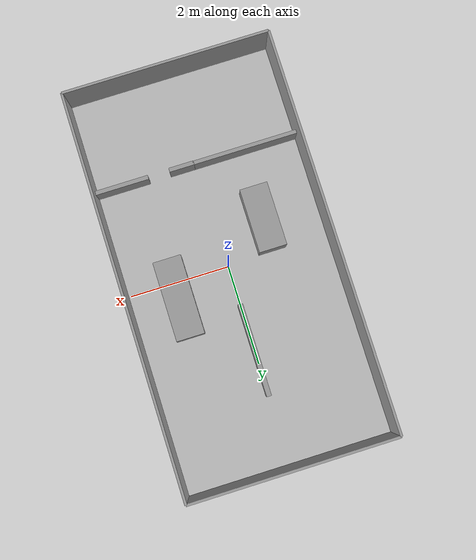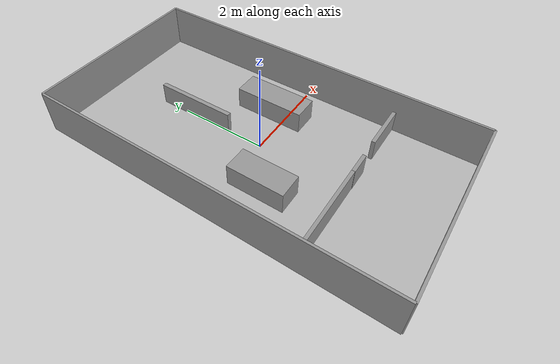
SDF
<sdf version="1.7">
 <world name="patrol_world">
  <light name="sun" type="directional">
   <pose>0 0 10 0 -0 0</pose>
   <diffuse>0.8 0.8 0.8 1</diffuse>
   <specular>0.2 0.2 0.2 1</specular>
   <attenuation>
    <range>1000</range>
    <constant>0.9</constant>
    <linear>0.01</linear>
    <quadratic>0.001</quadratic>
   </attenuation>
   <direction>-0.5 0.1 -0.9</direction>
   <spot><inner_angle>0</inner_angle><outer_angle>0</outer_angle><falloff>0</falloff></spot>
  </light>
  <model name="ground_plane">
   <static>1</static>
   <link name="link">
    <collision name="collision">
     <geometry><plane><normal>0 0 1</normal><size>100 100</size></plane></geometry>
     <surface>
      <contact><collide_bitmask>65535</collide_bitmask></contact>
      <friction><ode><mu>100</mu><mu2>50</mu2></ode></friction>
     </surface>
    </collision>
    <visual name="visual">
     <cast_shadows>0</cast_shadows>
     <geometry><box><size>4.116666666666666 8.066666666666666 .01</size></box></geometry>
     <material>
      <script>
       <uri>/home/dongyanqi/catkin_ws/src/simulator_gazebo/materials/scripts/patrol_region_map.material</uri>
       <name>GroundPlane/Image/patrol</name>
      </script>
     </material>
    </visual>
   </link>
  </model>
  <gravity>0 0 -9.8</gravity>
  <magnetic_field>6e-06 2.3e-05 -4.2e-05</magnetic_field>
  <atmosphere type="adiabatic"/>
  <physics type="ode">
   <max_step_size>0.001</max_step_size>
   <real_time_factor>1</real_time_factor>
   <real_time_update_rate>1000</real_time_update_rate>
  </physics>
  <scene><ambient>0.4 0.4 0.4 1</ambient><background>0.7 0.7 0.7 1</background><shadows>1</shadows></scene>
  <spherical_coordinates>
   <surface_model>EARTH_WGS84</surface_model>
   <latitude_deg>0</latitude_deg>
   <longitude_deg>0</longitude_deg>
   <elevation>0</elevation>
   <heading_deg>0</heading_deg>
  </spherical_coordinates>
  <model name="Box_0">
   <pose>0.301582656638545 -2.096809376253064 0 0 -0 0</pose>
   <link name="Box_0_link">
    <collision name="Box_0_Collision">
     <pose>0 0 0.25 0 -0 0</pose>
     <geometry><box><size>0.5023883396880358 0.083630318112351 0.5</size></box></geometry>
    </collision>
    <visual name="Box_0_Visual">
     <pose>0 0 0.25 0 -0 0</pose>
     <geometry><box><size>0.5023883396880358 0.083630318112351 0.5</size></box></geometry>
     <material>
      <script><uri>file://media/materials/scripts/gazebo.material</uri><name>Gazebo/Grey</name></script>
      <ambient>1 1 1 1</ambient>
     </material>
     <meta><layer>0</layer></meta>
    </visual>
    <inertial>
     <inertia><ixx>1</ixx><ixy>0</ixy><ixz>0</ixz><iyy>1</iyy><iyz>0</iyz><izz>1</izz></inertia>
     <mass>1</mass>
    </inertial>
   </link>
  </model>
  <model name="Box_1">
   <pose>-0.9917270517276285 -2.093775374536942 0 0 -0 0</pose>
   <link name="Box_1_link">
    <collision name="Box_1_Collision">
     <pose>0 0 0.25 0 -0 0</pose>
     <geometry><box><size>2.1179572151909953 0.07671716137227858 0.5</size></box></geometry>
    </collision>
    <visual name="Box_1_Visual">
     <pose>0 0 0.25 0 -0 0</pose>
     <geometry><box><size>2.1179572151909953 0.07671716137227858 0.5</size></box></geometry>
     <material>
      <script><uri>file://media/materials/scripts/gazebo.material</uri><name>Gazebo/Grey</name></script>
      <ambient>1 1 1 1</ambient>
     </material>
     <meta><layer>0</layer></meta>
    </visual>
    <inertial>
     <inertia><ixx>1</ixx><ixy>0</ixy><ixz>0</ixz><iyy>1</iyy><iyz>0</iyz><izz>1</izz></inertia>
     <mass>1</mass>
    </inertial>
   </link>
  </model>
  <model name="Box_2">
   <pose>1.5195341140515126 -2.087429974731144 0 0 -0 0</pose>
   <link name="Box_2_link">
    <collision name="Box_2_Collision">
     <pose>0 0 0.25 0 -0 0</pose>
     <geometry><box><size>1.0799799575450795 0.08413303861441257 0.5</size></box></geometry>
    </collision>
    <visual name="Box_2_Visual">
     <pose>0 0 0.25 0 -0 0</pose>
     <geometry><box><size>1.0799799575450795 0.08413303861441257 0.5</size></box></geometry>
     <material>
      <script><uri>file://media/materials/scripts/gazebo.material</uri><name>Gazebo/Grey</name></script>
      <ambient>1 1 1 1</ambient>
     </material>
     <meta><layer>0</layer></meta>
    </visual>
    <inertial>
     <inertia><ixx>1</ixx><ixy>0</ixy><ixz>0</ixz><iyy>1</iyy><iyz>0</iyz><izz>1</izz></inertia>
     <mass>1</mass>
    </inertial>
   </link>
  </model>
  <model name="Box_3">
   <pose>-0.9145012080840386 -0.6752626134581605 0 0 -0 0</pose>
   <link name="Box_3_link">
    <collision name="Box_3_Collision">
     <pose>0 0 0.25 0 -0 0</pose>
     <geometry><box><size>0.5545542265386039 1.2816556787741318 0.5</size></box></geometry>
    </collision>
    <visual name="Box_3_Visual">
     <pose>0 0 0.25 0 -0 0</pose>
     <geometry><box><size>0.5545542265386039 1.2816556787741318 0.5</size></box></geometry>
     <material>
      <script><uri>file://media/materials/scripts/gazebo.material</uri><name>Gazebo/Grey</name></script>
      <ambient>1 1 1 1</ambient>
     </material>
     <meta><layer>0</layer></meta>
    </visual>
    <inertial>
     <inertia><ixx>1</ixx><ixy>0</ixy><ixz>0</ixz><iyy>1</iyy><iyz>0</iyz><izz>1</izz></inertia>
     <mass>1</mass>
    </inertial>
   </link>
  </model>
  <model name="Box_4">
   <pose>1.1054388712079668 0.3331342634802855 0 0 -0 0</pose>
   <link name="Box_4_link">
    <collision name="Box_4_Collision">
     <pose>0 0 0.25 0 -0 0</pose>
     <geometry><box><size>0.5634102517450357 1.5811583760373873 0.5</size></box></geometry>
    </collision>
    <visual name="Box_4_Visual">
     <pose>0 0 0.25 0 -0 0</pose>
     <geometry><box><size>0.5634102517450357 1.5811583760373873 0.5</size></box></geometry>
     <material>
      <script><uri>file://media/materials/scripts/gazebo.material</uri><name>Gazebo/Grey</name></script>
      <ambient>1 1 1 1</ambient>
     </material>
     <meta><layer>0</layer></meta>
    </visual>
    <inertial>
     <inertia><ixx>1</ixx><ixy>0</ixy><ixz>0</ixz><iyy>1</iyy><iyz>0</iyz><izz>1</izz></inertia>
     <mass>1</mass>
    </inertial>
   </link>
  </model>
  <model name="Box_5">
   <pose>0.014985781143086959 1.7131937284160121 0 0 -0 0</pose>
   <link name="Box_5_link">
    <collision name="Box_5_Collision">
     <pose>0 0 0.25 0 -0 0</pose>
     <geometry><box><size>0.09748601940787482 1.8303371663456791 0.5</size></box></geometry>
    </collision>
    <visual name="Box_5_Visual">
     <pose>0 0 0.25 0 -0 0</pose>
     <geometry><box><size>0.09748601940787482 1.8303371663456791 0.5</size></box></geometry>
     <material>
      <script><uri>file://media/materials/scripts/gazebo.material</uri><name>Gazebo/Grey</name></script>
      <ambient>1 1 1 1</ambient>
     </material>
     <meta><layer>0</layer></meta>
    </visual>
    <inertial>
     <inertia><ixx>1</ixx><ixy>0</ixy><ixz>0</ixz><iyy>1</iyy><iyz>0</iyz><izz>1</izz></inertia>
     <mass>1</mass>
    </inertial>
   </link>
  </model>
  <model name="Boundary_0">
   <pose>0.0033501777167668223 -4.025353612042144 0 0 -0 0</pose>
   <link name="Boundary_0_link">
    <collision name="Boundary_0_Collision">
     <pose>0 0 0.5 0 -0 0</pose>
     <geometry><box><size>4.135234624030213 0.05 1</size></box></geometry>
    </collision>
    <visual name="Boundary_0_Visual">
     <pose>0 0 0.5 0 -0 0</pose>
     <geometry><box><size>4.135234624030213 0.05 1</size></box></geometry>
     <material>
      <script><uri>file://media/materials/scripts/gazebo.material</uri><name>Gazebo/Grey</name></script>
      <ambient>1 1 1 1</ambient>
     </material>
     <meta><layer>0</layer></meta>
    </visual>
    <inertial>
     <inertia><ixx>1</ixx><ixy>0</ixy><ixz>0</ixz><iyy>1</iyy><iyz>0</iyz><izz>1</izz></inertia>
     <mass>1</mass>
    </inertial>
   </link>
  </model>
  <model name="Boundary_1">
   <pose>2.0709674897318733 0.0011958086827785763 0 0 -0 0</pose>
   <link name="Boundary_1_link">
    <collision name="Boundary_1_Collision">
     <pose>0 0 0.5 0 -0 0</pose>
     <geometry><box><size>0.05 8.053098841449845 1</size></box></geometry>
    </collision>
    <visual name="Boundary_1_Visual">
     <pose>0 0 0.5 0 -0 0</pose>
     <geometry><box><size>0.05 8.053098841449845 1</size></box></geometry>
     <material>
      <script><uri>file://media/materials/scripts/gazebo.material</uri><name>Gazebo/Grey</name></script>
      <ambient>1 1 1 1</ambient>
     </material>
     <meta><layer>0</layer></meta>
    </visual>
    <inertial>
     <inertia><ixx>1</ixx><ixy>0</ixy><ixz>0</ixz><iyy>1</iyy><iyz>0</iyz><izz>1</izz></inertia>
     <mass>1</mass>
    </inertial>
   </link>
  </model>
  <model name="Boundary_2">
   <pose>0.0033501777167668223 4.027745229407701 0 0 -0 0</pose>
   <link name="Boundary_2_link">
    <collision name="Boundary_2_Collision">
     <pose>0 0 0.5 0 -0 0</pose>
     <geometry><box><size>4.135234624030213 0.05 1</size></box></geometry>
    </collision>
    <visual name="Boundary_2_Visual">
     <pose>0 0 0.5 0 -0 0</pose>
     <geometry><box><size>4.135234624030213 0.05 1</size></box></geometry>
     <material>
      <script><uri>file://media/materials/scripts/gazebo.material</uri><name>Gazebo/Grey</name></script>
      <ambient>1 1 1 1</ambient>
     </material>
     <meta><layer>0</layer></meta>
    </visual>
    <inertial>
     <inertia><ixx>1</ixx><ixy>0</ixy><ixz>0</ixz><iyy>1</iyy><iyz>0</iyz><izz>1</izz></inertia>
     <mass>1</mass>
    </inertial>
   </link>
  </model>
  <model name="Boundary_3">
   <pose>-2.0642671342983396 0.0011958086827785763 0 0 -0 0</pose>
   <link name="Boundary_3_link">
    <collision name="Boundary_3_Collision">
     <pose>0 0 0.5 0 -0 0</pose>
     <geometry><box><size>0.05 8.053098841449845 1</size></box></geometry>
    </collision>
    <visual name="Boundary_3_Visual">
     <pose>0 0 0.5 0 -0 0</pose>
     <geometry><box><size>0.05 8.053098841449845 1</size></box></geometry>
     <material>
      <script><uri>file://media/materials/scripts/gazebo.material</uri><name>Gazebo/Grey</name></script>
      <ambient>1 1 1 1</ambient>
     </material>
     <meta><layer>0</layer></meta>
    </visual>
    <inertial>
     <inertia><ixx>1</ixx><ixy>0</ixy><ixz>0</ixz><iyy>1</iyy><iyz>0</iyz><izz>1</izz></inertia>
     <mass>1</mass>
    </inertial>
   </link>
  </model>
 </world>
</sdf>
